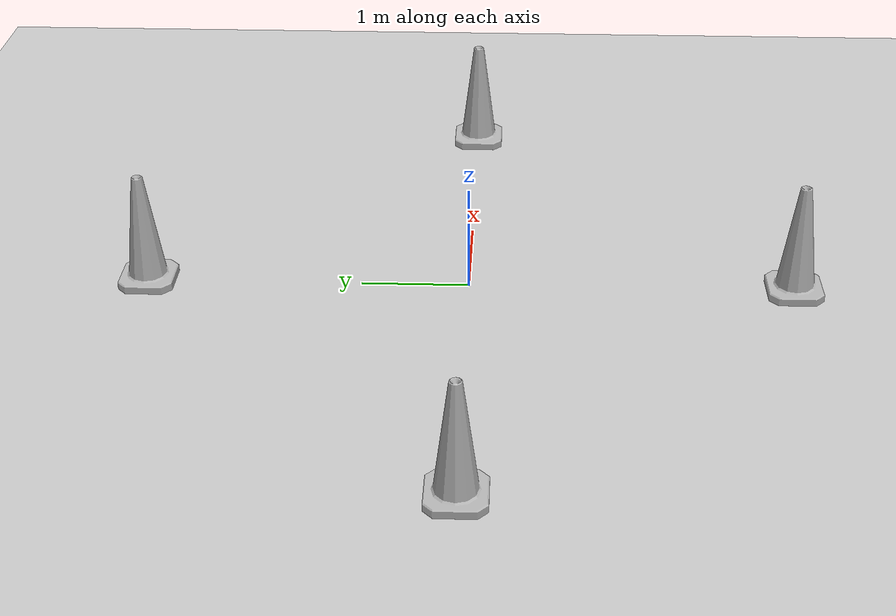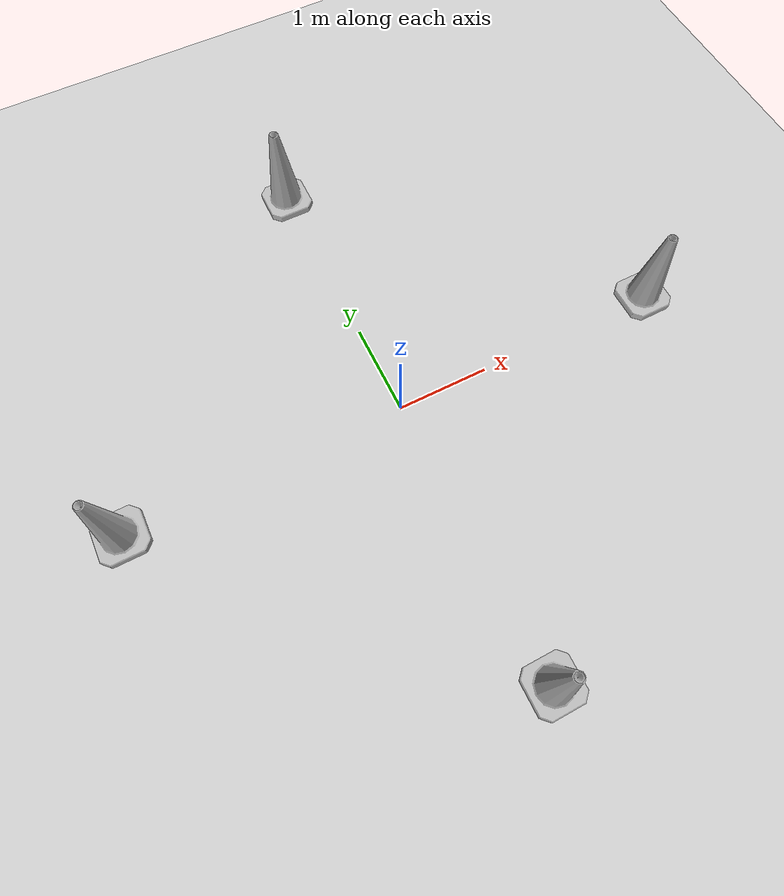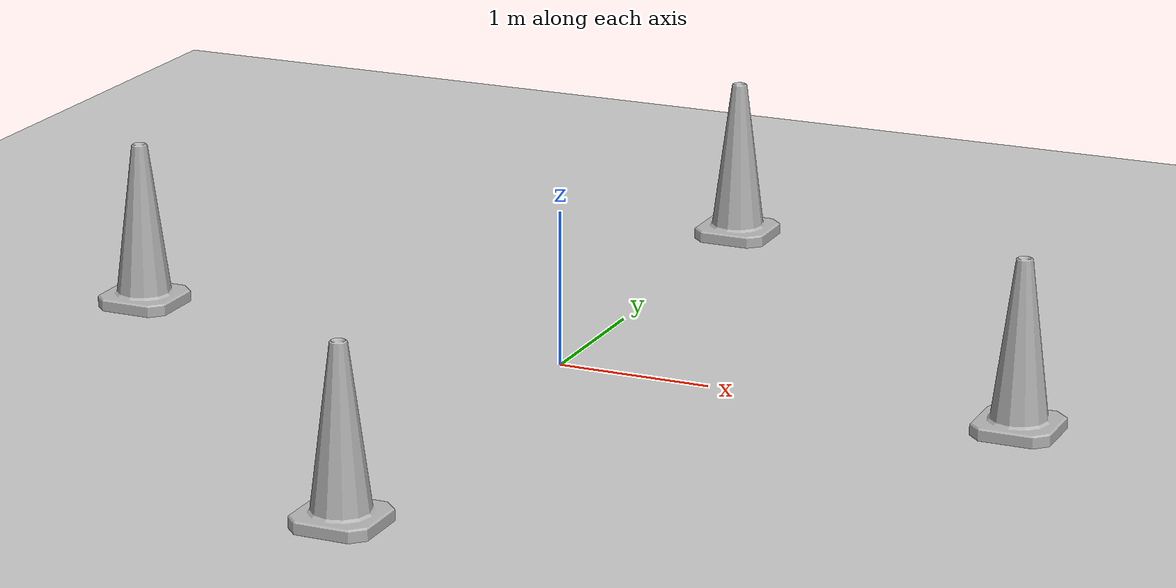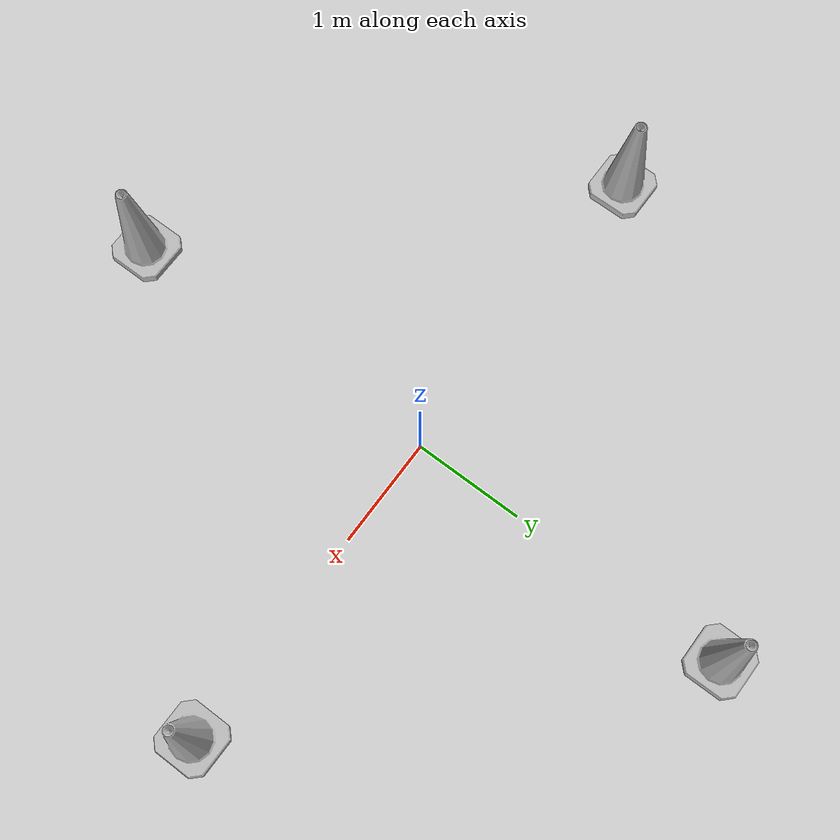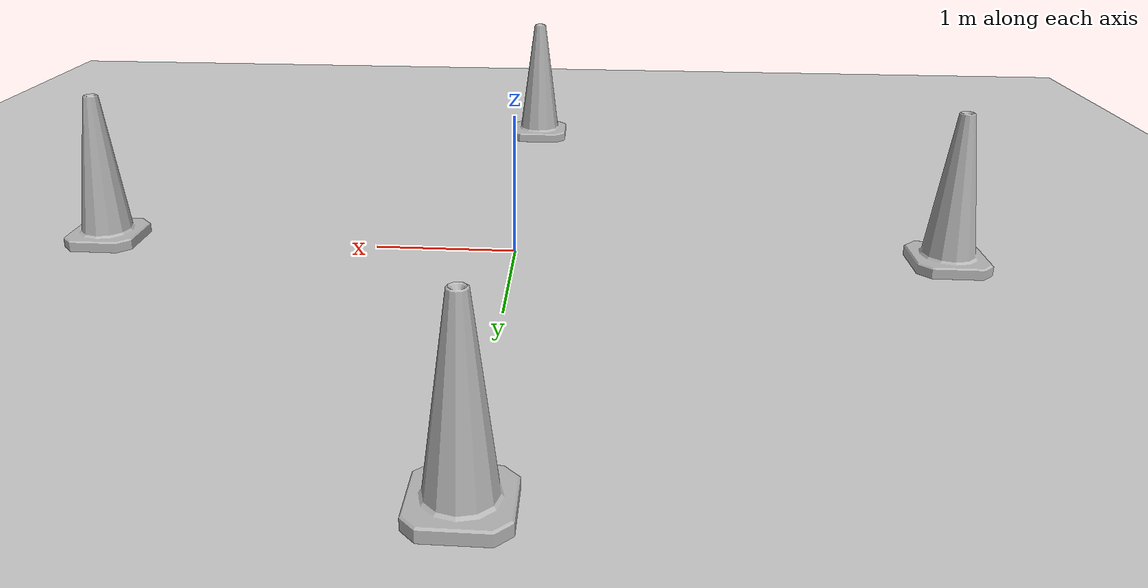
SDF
<?xml version="1.0"?>
<sdf version="1.5">
  <world name="default">
    <!-- A global light source -->
    <include>
      <uri>model://sun</uri>
    </include>
    <!-- A ground plane -->
    <include>
      <name>ground</name>
      <uri>model://ground_plane</uri>
    </include>

    <include>
      <pose>3 0 0 0 0 0</pose>
      <name>c1</name>
      <uri>model://construction_cone</uri>
    </include>
    <include>
      <name>c2</name>
      <pose>0 3 0 0 0 0</pose>
      <uri>model://construction_cone</uri>
    </include>
    <include>
      <pose>0 -3 0 0 0 0</pose>
      <name>c3</name>
      <uri>model://construction_cone</uri>
    </include>
    <include>
      <name>c4</name>
      <pose>-3 0 0 0 0 0</pose>
      <uri>model://construction_cone</uri>
    </include>
  </world>
</sdf>

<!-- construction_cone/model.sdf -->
<sdf version="1.5">
  <model name="Construction Cone">
    <link name="link">
      <collision name="collision">
        <geometry>
          <mesh>
            <scale>10 10 10</scale>
            <uri>file://isr-testbed/construction_cone/meshes/construction_cone.dae</uri>
          </mesh>
        </geometry>
      </collision>
      <visual name="visual">
        <geometry>
          <mesh>
            <scale>10 10 10</scale>
            <uri>file://isr-testbed/construction_cone/meshes/construction_cone.dae</uri>
          </mesh>
        </geometry>
      </visual>
    </link>
  </model>
</sdf>
